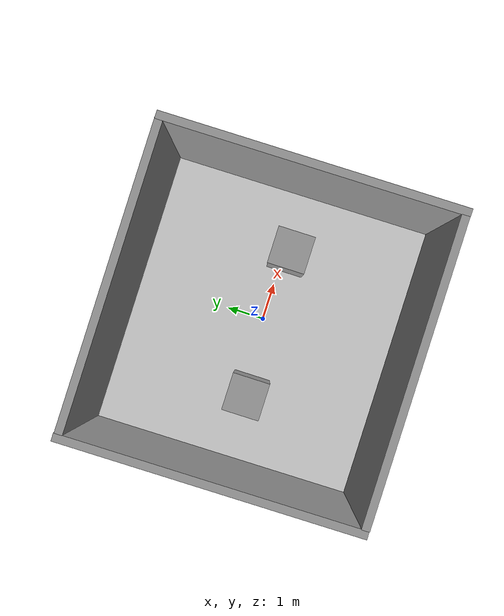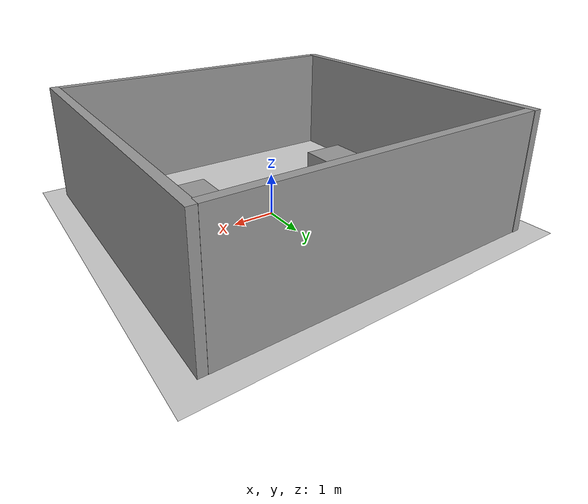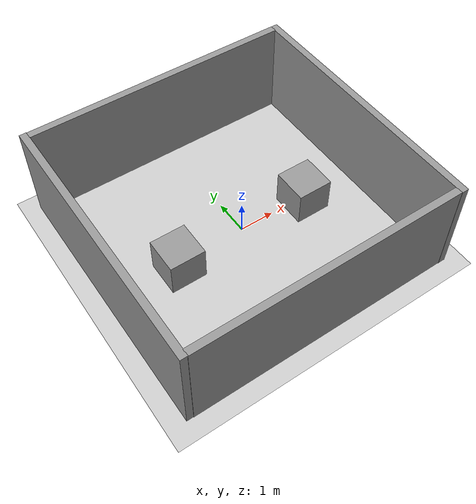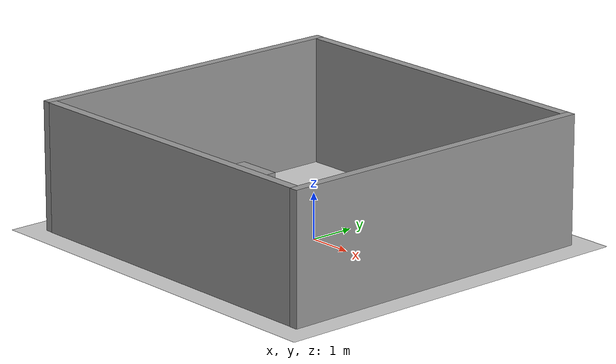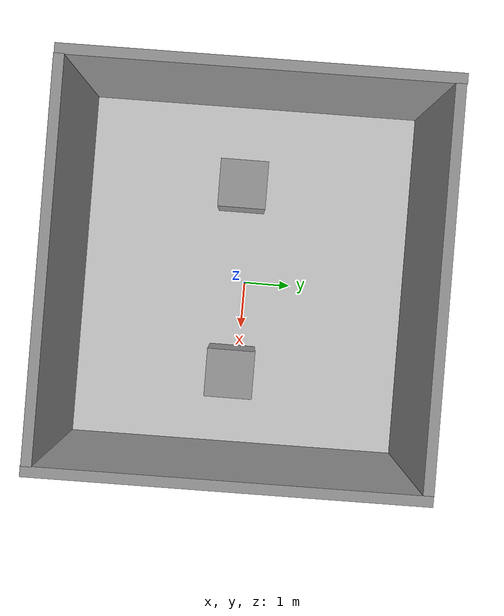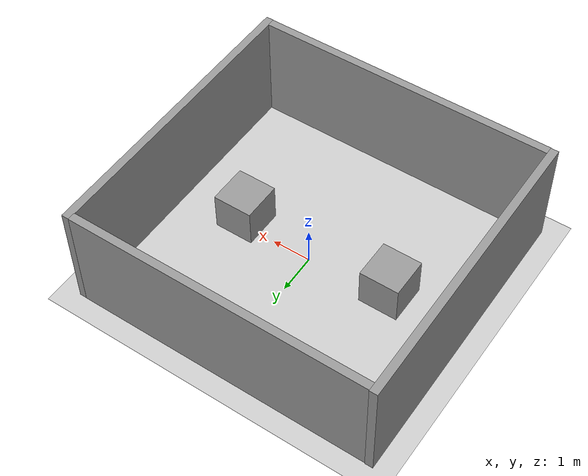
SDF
<sdf version="1.6">
 <world name="default">
  <scene><ambient>0.4 0.4 0.4 1</ambient><background>0.7 0.7 0.7 1</background><shadows>1</shadows></scene>
  <light name="sun" type="directional">
   <pose>0 0 10 0 -0 0</pose>
   <diffuse>0.8 0.8 0.8 1</diffuse>
   <specular>0.2 0.2 0.2 1</specular>
   <attenuation>
    <range>1000</range>
    <constant>0.9</constant>
    <linear>0.01</linear>
    <quadratic>0.001</quadratic>
   </attenuation>
   <direction>-0.5 0.1 -0.9</direction>
  </light>
  <model name="ground_plane">
   <static>1</static>
   <link name="link">
    <collision name="collision">
     <geometry><plane><normal>0 0 1</normal><size>100 100</size></plane></geometry>
     <surface>
      <contact><collide_bitmask>65535</collide_bitmask></contact>
      <friction><ode><mu>100</mu><mu2>50</mu2></ode></friction>
     </surface>
    </collision>
    <visual name="visual">
     <cast_shadows>0</cast_shadows>
     <geometry><plane><normal>0 0 1</normal><size>100 100</size></plane></geometry>
     <material>
      <script><uri>file://media/materials/scripts/gazebo.material</uri><name>Gazebo/Grey</name></script>
     </material>
    </visual>
   </link>
  </model>
  <physics name="default_physics" default="0" type="ode">
   <real_time_update_rate>1000</real_time_update_rate>
   <max_step_size>0.001</max_step_size>
   <real_time_factor>1</real_time_factor>
   <ode>
    <solver>
     <type>quick</type>
     <iters>150</iters>
     <precon_iters>0</precon_iters>
     <sor>1.4</sor>
     <use_dynamic_moi_rescaling>1</use_dynamic_moi_rescaling>
    </solver>
    <constraints>
     <cfm>1e-05</cfm>
     <erp>0.2</erp>
     <contact_max_correcting_vel>2000</contact_max_correcting_vel>
     <contact_surface_layer>0.01</contact_surface_layer>
    </constraints>
   </ode>
  </physics>
  <gravity>0 0 -9.8</gravity>
  <magnetic_field>6e-06 2.3e-05 -4.2e-05</magnetic_field>
  <atmosphere type="adiabatic"/>
  <spherical_coordinates>
   <surface_model>EARTH_WGS84</surface_model>
   <latitude_deg>0</latitude_deg>
   <longitude_deg>0</longitude_deg>
   <elevation>0</elevation>
   <heading_deg>0</heading_deg>
  </spherical_coordinates>
  <model name="grey_wall">
   <static>1</static>
   <link name="link">
    <pose>0 0 1.4 0 -0 0</pose>
    <collision name="collision"><geometry><box><size>7.5 0.2 2.8</size></box></geometry></collision>
    <visual name="visual">
     <cast_shadows>0</cast_shadows>
     <geometry><box><size>7.5 0.2 2.8</size></box></geometry>
     <material>
      <script>
       <uri>model://grey_wall/materials/scripts</uri>
       <uri>model://grey_wall/materials/textures</uri>
       <name>vrc/grey_wall</name>
      </script>
     </material>
    </visual>
   </link>
   <pose>-0.151376 -3.675 0 0 -0 0</pose>
  </model>
  <model name="grey_wall_clone">
   <static>1</static>
   <link name="link">
    <pose>0 0 1.4 0 -0 0</pose>
    <collision name="collision"><geometry><box><size>7.5 0.2 2.8</size></box></geometry></collision>
    <visual name="visual">
     <cast_shadows>0</cast_shadows>
     <geometry><box><size>7.5 0.2 2.8</size></box></geometry>
     <material>
      <script>
       <uri>model://grey_wall/materials/scripts</uri>
       <uri>model://grey_wall/materials/textures</uri>
       <name>vrc/grey_wall</name>
      </script>
     </material>
    </visual>
   </link>
   <pose>3.66885 -0.03193 0 0 0 -1.56558</pose>
  </model>
  <model name="grey_wall_clone_0">
   <static>1</static>
   <link name="link">
    <pose>0 0 1.4 0 -0 0</pose>
    <collision name="collision"><geometry><box><size>7.5 0.2 2.8</size></box></geometry></collision>
    <visual name="visual">
     <cast_shadows>0</cast_shadows>
     <geometry><box><size>7.5 0.2 2.8</size></box></geometry>
     <material>
      <script>
       <uri>model://grey_wall/materials/scripts</uri>
       <uri>model://grey_wall/materials/textures</uri>
       <name>vrc/grey_wall</name>
      </script>
     </material>
    </visual>
   </link>
   <pose>-0.181596 3.6218 0 0 -0 0</pose>
  </model>
  <model name="grey_wall_clone_clone">
   <static>1</static>
   <link name="link">
    <pose>0 0 1.4 0 -0 0</pose>
    <collision name="collision"><geometry><box><size>7.5 0.2 2.8</size></box></geometry></collision>
    <visual name="visual">
     <cast_shadows>0</cast_shadows>
     <geometry><box><size>7.5 0.2 2.8</size></box></geometry>
     <material>
      <script>
       <uri>model://grey_wall/materials/scripts</uri>
       <uri>model://grey_wall/materials/textures</uri>
       <name>vrc/grey_wall</name>
      </script>
     </material>
    </visual>
   </link>
   <pose>-4.00586 -0.015646 0 0 0 -1.56558</pose>
  </model>
  <model name="unit_box">
   <pose>-2.06573 -0.188906 0.5 0 -0 0</pose>
   <link name="link">
    <inertial>
     <mass>1</mass>
     <inertia>
      <ixx>0.166667</ixx>
      <ixy>0</ixy>
      <ixz>0</ixz>
      <iyy>0.166667</iyy>
      <iyz>0</iyz>
      <izz>0.166667</izz>
     </inertia>
    </inertial>
    <collision name="collision"><geometry><box><size>1 1 1</size></box></geometry></collision>
    <visual name="visual">
     <geometry><box><size>1 1 1</size></box></geometry>
     <material>
      <script><name>Gazebo/Grey</name><uri>file://media/materials/scripts/gazebo.material</uri></script>
     </material>
    </visual>
   </link>
  </model>
  <model name="unit_box_0">
   <pose>1.91072 -0.16064 0.5 0 -0 0</pose>
   <link name="link">
    <inertial>
     <mass>1</mass>
     <inertia>
      <ixx>0.166667</ixx>
      <ixy>0</ixy>
      <ixz>0</ixz>
      <iyy>0.166667</iyy>
      <iyz>0</iyz>
      <izz>0.166667</izz>
     </inertia>
    </inertial>
    <collision name="collision"><geometry><box><size>1 1 1</size></box></geometry></collision>
    <visual name="visual">
     <geometry><box><size>1 1 1</size></box></geometry>
     <material>
      <script><name>Gazebo/Grey</name><uri>file://media/materials/scripts/gazebo.material</uri></script>
     </material>
    </visual>
   </link>
  </model>
 </world>
</sdf>
